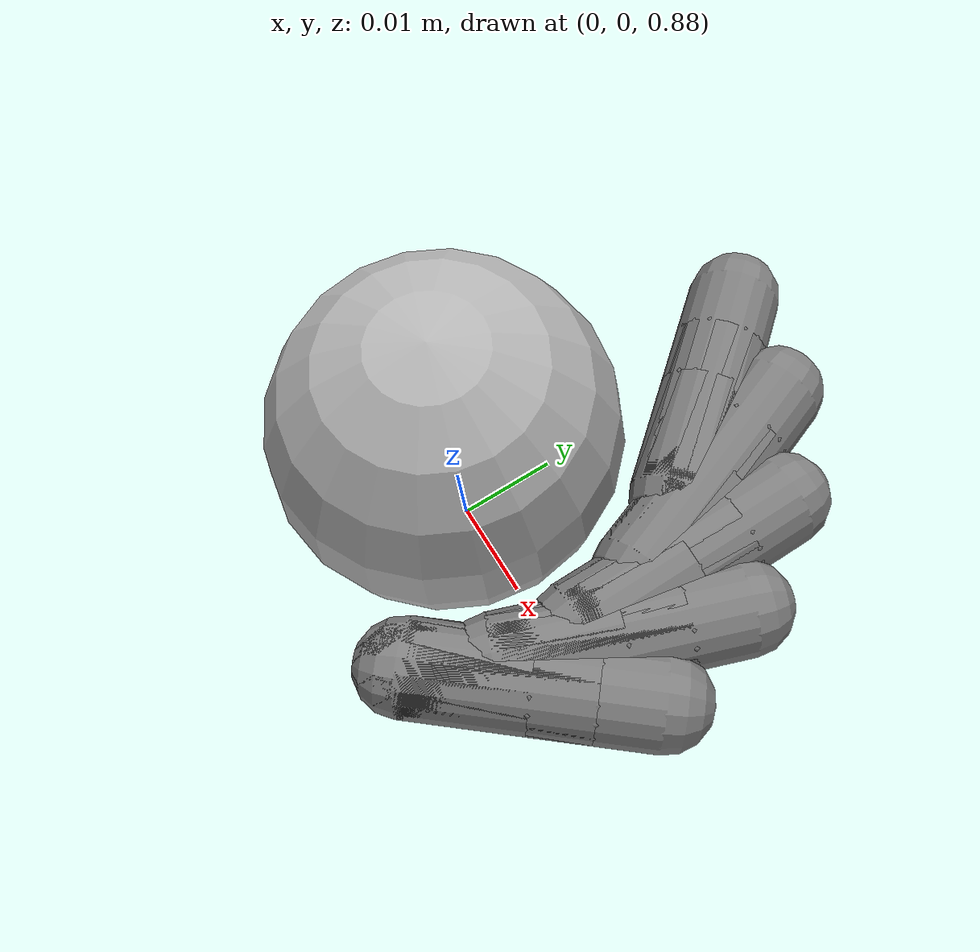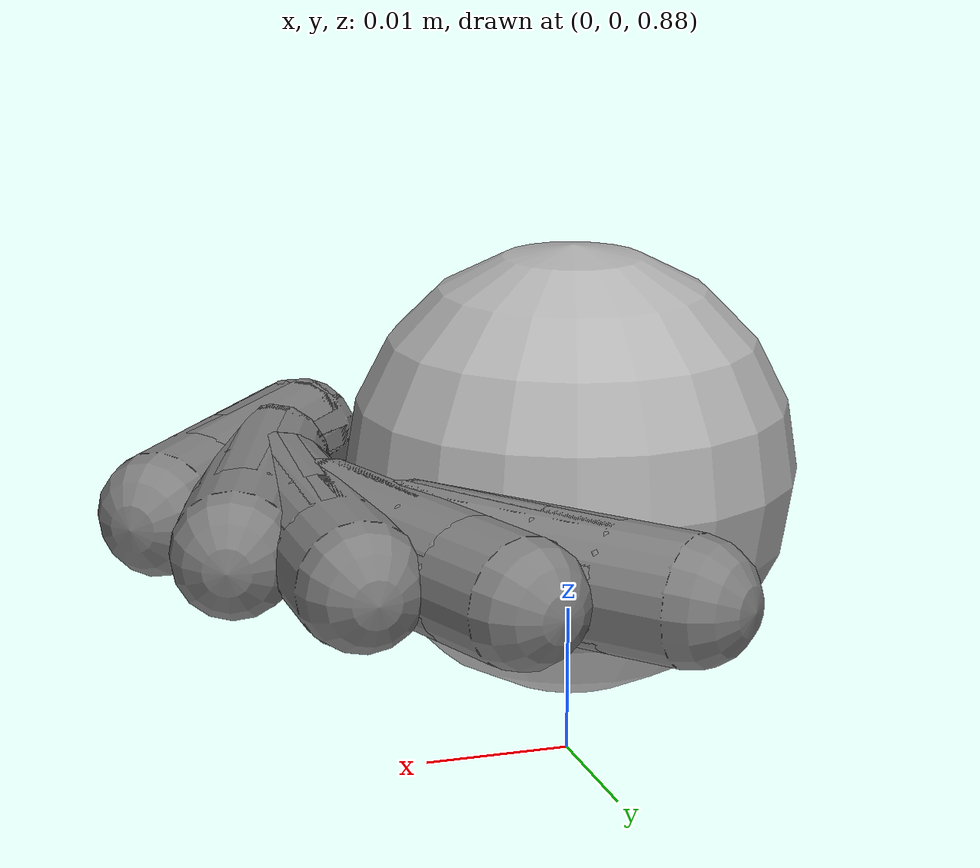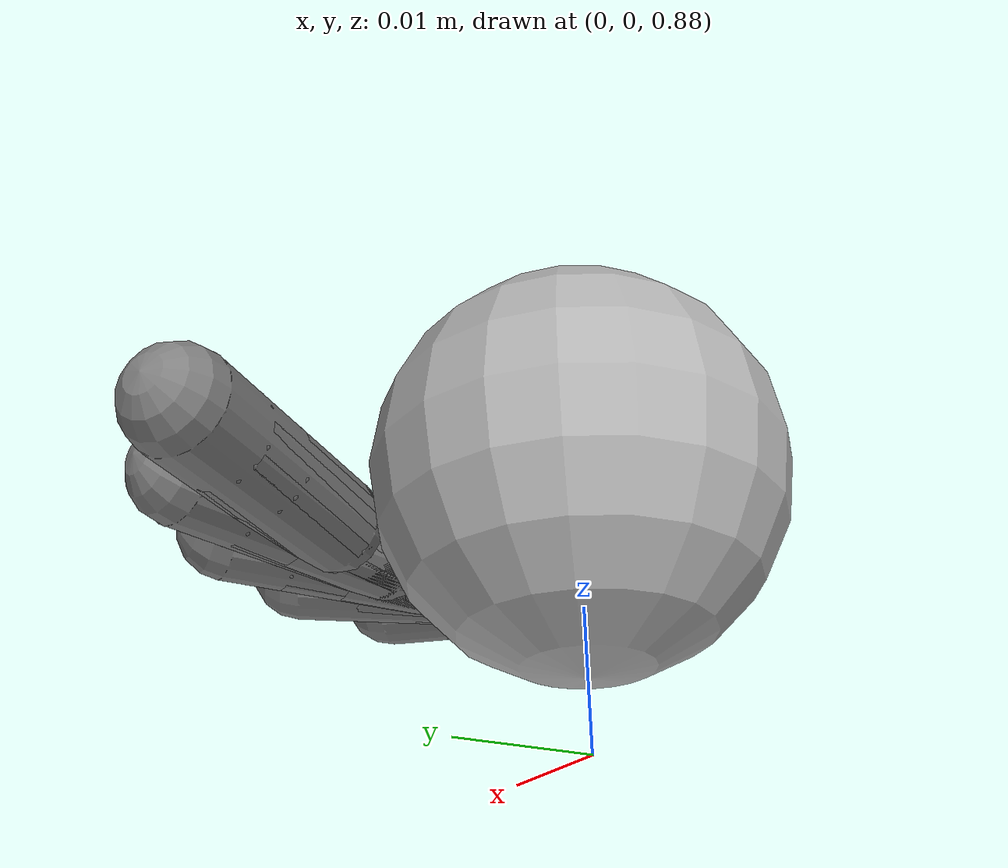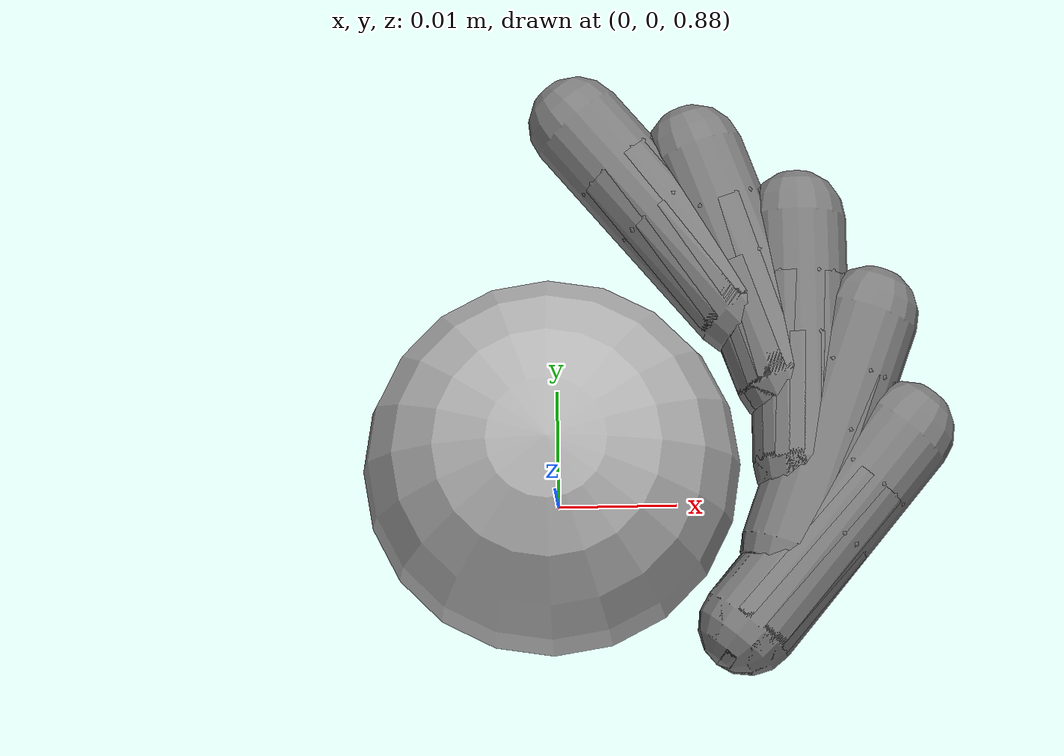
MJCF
<mujoco>
  <worldbody>
    <!-- Base of the hand -->
    <body name="hand_root" pos="0 0 0.9">
      <!-- Wrist with 2 DoF -->
      <joint name="wrist_pitch" type="hinge" axis="1 0 0" range="-30 30"/>
      <joint name="wrist_yaw" type="hinge" axis="0 0 1" range="-30 30"/>
      <geom type="sphere" size="0.015" rgba="0.7 0.7 0.7 1"/>

      <!-- Define fingers -->

      <body name="thumb_base" pos="0 0 0">
        <body name="thumb_rotated" euler="0 0 -40">
          <body pos="0.02 0 0">
            <joint name="thumb_j1" type="hinge" axis="0 1 0"/>
            <geom type="capsule" fromto="0 0 0 0 0.02 0" size="0.004"/>
            <body>
              <joint name="thumb_j2" type="hinge" axis="0 1 0"/>
              <geom type="capsule" fromto="0 0 0 0 0.02 0" size="0.004"/>
              <body>
                <joint name="thumb_j3" type="hinge" axis="0 1 0"/>
                <geom type="capsule" fromto="0 0 0 0 0.015 0" size="0.004"/>
                <body>
                  <joint name="thumb_j4" type="hinge" axis="0 1 0"/>
                  <geom type="capsule" fromto="0 0 0 0 0.01 0" size="0.004"/>
                </body>
              </body>
            </body>
          </body>
        </body>
      </body>

      <body name="index_base" pos="0 0 0">
        <body name="index_rotated" euler="0 0 -20">
          <body pos="0.02 0 0">
            <joint name="index_j1" type="hinge" axis="0 1 0"/>
            <geom type="capsule" fromto="0 0 0 0 0.02 0" size="0.004"/>
            <body>
              <joint name="index_j2" type="hinge" axis="0 1 0"/>
              <geom type="capsule" fromto="0 0 0 0 0.02 0" size="0.004"/>
              <body>
                <joint name="index_j3" type="hinge" axis="0 1 0"/>
                <geom type="capsule" fromto="0 0 0 0 0.015 0" size="0.004"/>
                <body>
                  <joint name="index_j4" type="hinge" axis="0 1 0"/>
                  <geom type="capsule" fromto="0 0 0 0 0.01 0" size="0.004"/>
                </body>
              </body>
            </body>
          </body>
        </body>
      </body>

      <body name="middle_base" pos="0 0 0">
        <body name="middle_rotated" euler="0 0 0">
          <body pos="0.02 0 0">
            <joint name="middle_j1" type="hinge" axis="0 1 0"/>
            <geom type="capsule" fromto="0 0 0 0 0.02 0" size="0.004"/>
            <body>
              <joint name="middle_j2" type="hinge" axis="0 1 0"/>
              <geom type="capsule" fromto="0 0 0 0 0.02 0" size="0.004"/>
              <body>
                <joint name="middle_j3" type="hinge" axis="0 1 0"/>
                <geom type="capsule" fromto="0 0 0 0 0.015 0" size="0.004"/>
                <body>
                  <joint name="middle_j4" type="hinge" axis="0 1 0"/>
                  <geom type="capsule" fromto="0 0 0 0 0.01 0" size="0.004"/>
                </body>
              </body>
            </body>
          </body>
        </body>
      </body>

      <body name="ring_base" pos="0 0 0">
        <body name="ring_rotated" euler="0 0 20">
          <body pos="0.02 0 0">
            <joint name="ring_j1" type="hinge" axis="0 1 0"/>
            <geom type="capsule" fromto="0 0 0 0 0.02 0" size="0.004"/>
            <body>
              <joint name="ring_j2" type="hinge" axis="0 1 0"/>
              <geom type="capsule" fromto="0 0 0 0 0.02 0" size="0.004"/>
              <body>
                <joint name="ring_j3" type="hinge" axis="0 1 0"/>
                <geom type="capsule" fromto="0 0 0 0 0.015 0" size="0.004"/>
                <body>
                  <joint name="ring_j4" type="hinge" axis="0 1 0"/>
                  <geom type="capsule" fromto="0 0 0 0 0.01 0" size="0.004"/>
                </body>
              </body>
            </body>
          </body>
        </body>
      </body>

      <body name="pinky_base" pos="0 0 0">
        <body name="pinky_rotated" euler="0 0 40">
          <body pos="0.02 0 0">
            <joint name="pinky_j1" type="hinge" axis="0 1 0"/>
            <geom type="capsule" fromto="0 0 0 0 0.02 0" size="0.004"/>
            <body>
              <joint name="pinky_j2" type="hinge" axis="0 1 0"/>
              <geom type="capsule" fromto="0 0 0 0 0.02 0" size="0.004"/>
              <body>
                <joint name="pinky_j3" type="hinge" axis="0 1 0"/>
                <geom type="capsule" fromto="0 0 0 0 0.015 0" size="0.004"/>
                <body>
                  <joint name="pinky_j4" type="hinge" axis="0 1 0"/>
                  <geom type="capsule" fromto="0 0 0 0 0.01 0" size="0.004"/>
                </body>
              </body>
            </body>
          </body>
        </body>
      </body>

    </body>
  </worldbody>
</mujoco>
